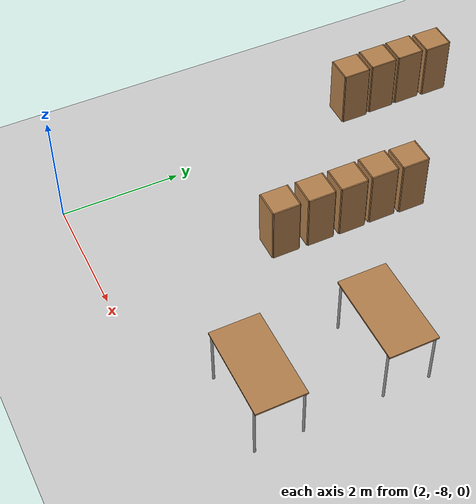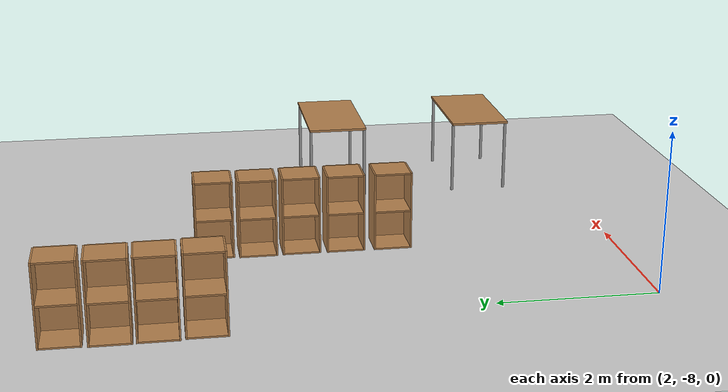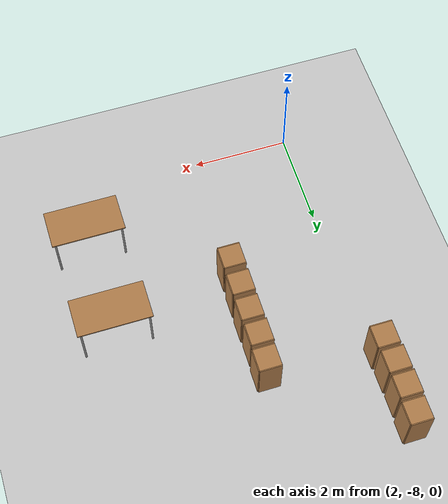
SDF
<sdf version="1.7">
 <world name="default">
  <model name="ground_plane">
   <static>1</static>
   <link name="link">
    <collision name="collision">
     <geometry><plane><normal>0 0 1</normal><size>100 100</size></plane></geometry>
     <surface><friction><ode><mu>100</mu><mu2>50</mu2></ode></friction></surface>
    </collision>
    <visual name="visual">
     <cast_shadows>0</cast_shadows>
     <geometry><plane><normal>0 0 1</normal><size>100 100</size></plane></geometry>
     <material>
      <script><uri>file://media/materials/scripts/gazebo.material</uri><name>Gazebo/Grey</name></script>
     </material>
    </visual>
   </link>
  </model>
  <model name="cabinet">
   <static>1</static>
   <link name="cabinet_bottom_plate">
    <inertial>
     <pose>0 0 -1 0 -0 0</pose>
     <inertia><ixx>2.05</ixx><ixy>0</ixy><ixz>0</ixz><iyy>2.05</iyy><iyz>0</iyz><izz>2.05</izz></inertia>
     <mass>25</mass>
    </inertial>
    <collision name="cabinet_bottom_plate_geom">
     <pose>0 0 0.01 0 -0 0</pose>
     <geometry><box><size>0.45 0.45 0.02</size></box></geometry>
    </collision>
    <visual name="cabinet_bottom_plate_geom_visual">
     <pose>0 0 0.01 0 -0 0</pose>
     <geometry><box><size>0.45 0.45 0.02</size></box></geometry>
     <material>
      <script><uri>file://media/materials/scripts/gazebo.material</uri><name>Gazebo/Wood</name></script>
     </material>
    </visual>
    <collision name="cabinet_bottom_plate_geom_cabinet_back_plate">
     <pose>0.235 0 0.51 0 -0 0</pose>
     <geometry><box><size>0.02 0.45 1.02</size></box></geometry>
    </collision>
    <visual name="cabinet_bottom_plate_geom_cabinet_back_plate_visual">
     <pose>0.235 0 0.51 0 -0 0</pose>
     <geometry><box><size>0.02 0.45 1.02</size></box></geometry>
     <material>
      <script><uri>file://media/materials/scripts/gazebo.material</uri><name>Gazebo/Wood</name></script>
     </material>
    </visual>
    <collision name="cabinet_bottom_plate_geom_cabinet_left_plate">
     <pose>0 0.235 0.51 0 -0 0</pose>
     <geometry><box><size>0.45 0.02 1.02</size></box></geometry>
    </collision>
    <visual name="cabinet_bottom_plate_geom_cabinet_left_plate_visual">
     <pose>0 0.235 0.51 0 -0 0</pose>
     <geometry><box><size>0.45 0.02 1.02</size></box></geometry>
     <material>
      <script><uri>file://media/materials/scripts/gazebo.material</uri><name>Gazebo/Wood</name></script>
     </material>
    </visual>
    <collision name="cabinet_bottom_plate_geom_cabinet_middle_plate">
     <pose>0 0 0.51 0 -0 0</pose>
     <geometry><box><size>0.45 0.45 0.02</size></box></geometry>
    </collision>
    <visual name="cabinet_bottom_plate_geom_cabinet_middle_plate_visual">
     <pose>0 0 0.51 0 -0 0</pose>
     <geometry><box><size>0.45 0.45 0.02</size></box></geometry>
     <material>
      <script><uri>file://media/materials/scripts/gazebo.material</uri><name>Gazebo/Wood</name></script>
     </material>
    </visual>
    <collision name="cabinet_bottom_plate_geom_cabinet_right_plate">
     <pose>0 -0.235 0.51 0 -0 0</pose>
     <geometry><box><size>0.45 0.02 1.02</size></box></geometry>
    </collision>
    <visual name="cabinet_bottom_plate_geom_cabinet_right_plate_visual">
     <pose>0 -0.235 0.51 0 -0 0</pose>
     <geometry><box><size>0.45 0.02 1.02</size></box></geometry>
     <material>
      <script><uri>file://media/materials/scripts/gazebo.material</uri><name>Gazebo/Wood</name></script>
     </material>
    </visual>
    <collision name="cabinet_bottom_plate_geom_cabinet_top_plate">
     <pose>0 0 1.01 0 -0 0</pose>
     <geometry><box><size>0.45 0.45 0.02</size></box></geometry>
    </collision>
    <visual name="cabinet_bottom_plate_geom_cabinet_top_plate_visual">
     <pose>0 0 1.01 0 -0 0</pose>
     <geometry><box><size>0.45 0.45 0.02</size></box></geometry>
     <material>
      <script><uri>file://media/materials/scripts/gazebo.material</uri><name>Gazebo/Wood</name></script>
     </material>
    </visual>
   </link>
   <pose>4.11256 -2.83358 0 0 -0 0</pose>
  </model>
  <model name="cabinet_0">
   <static>1</static>
   <link name="cabinet_bottom_plate">
    <inertial>
     <pose>0 0 -1 0 -0 0</pose>
     <inertia><ixx>2.05</ixx><ixy>0</ixy><ixz>0</ixz><iyy>2.05</iyy><iyz>0</iyz><izz>2.05</izz></inertia>
     <mass>25</mass>
    </inertial>
    <collision name="cabinet_bottom_plate_geom">
     <pose>0 0 0.01 0 -0 0</pose>
     <geometry><box><size>0.45 0.45 0.02</size></box></geometry>
    </collision>
    <visual name="cabinet_bottom_plate_geom_visual">
     <pose>0 0 0.01 0 -0 0</pose>
     <geometry><box><size>0.45 0.45 0.02</size></box></geometry>
     <material>
      <script><uri>file://media/materials/scripts/gazebo.material</uri><name>Gazebo/Wood</name></script>
     </material>
    </visual>
    <collision name="cabinet_bottom_plate_geom_cabinet_back_plate">
     <pose>0.235 0 0.51 0 -0 0</pose>
     <geometry><box><size>0.02 0.45 1.02</size></box></geometry>
    </collision>
    <visual name="cabinet_bottom_plate_geom_cabinet_back_plate_visual">
     <pose>0.235 0 0.51 0 -0 0</pose>
     <geometry><box><size>0.02 0.45 1.02</size></box></geometry>
     <material>
      <script><uri>file://media/materials/scripts/gazebo.material</uri><name>Gazebo/Wood</name></script>
     </material>
    </visual>
    <collision name="cabinet_bottom_plate_geom_cabinet_left_plate">
     <pose>0 0.235 0.51 0 -0 0</pose>
     <geometry><box><size>0.45 0.02 1.02</size></box></geometry>
    </collision>
    <visual name="cabinet_bottom_plate_geom_cabinet_left_plate_visual">
     <pose>0 0.235 0.51 0 -0 0</pose>
     <geometry><box><size>0.45 0.02 1.02</size></box></geometry>
     <material>
      <script><uri>file://media/materials/scripts/gazebo.material</uri><name>Gazebo/Wood</name></script>
     </material>
    </visual>
    <collision name="cabinet_bottom_plate_geom_cabinet_middle_plate">
     <pose>0 0 0.51 0 -0 0</pose>
     <geometry><box><size>0.45 0.45 0.02</size></box></geometry>
    </collision>
    <visual name="cabinet_bottom_plate_geom_cabinet_middle_plate_visual">
     <pose>0 0 0.51 0 -0 0</pose>
     <geometry><box><size>0.45 0.45 0.02</size></box></geometry>
     <material>
      <script><uri>file://media/materials/scripts/gazebo.material</uri><name>Gazebo/Wood</name></script>
     </material>
    </visual>
    <collision name="cabinet_bottom_plate_geom_cabinet_right_plate">
     <pose>0 -0.235 0.51 0 -0 0</pose>
     <geometry><box><size>0.45 0.02 1.02</size></box></geometry>
    </collision>
    <visual name="cabinet_bottom_plate_geom_cabinet_right_plate_visual">
     <pose>0 -0.235 0.51 0 -0 0</pose>
     <geometry><box><size>0.45 0.02 1.02</size></box></geometry>
     <material>
      <script><uri>file://media/materials/scripts/gazebo.material</uri><name>Gazebo/Wood</name></script>
     </material>
    </visual>
    <collision name="cabinet_bottom_plate_geom_cabinet_top_plate">
     <pose>0 0 1.01 0 -0 0</pose>
     <geometry><box><size>0.45 0.45 0.02</size></box></geometry>
    </collision>
    <visual name="cabinet_bottom_plate_geom_cabinet_top_plate_visual">
     <pose>0 0 1.01 0 -0 0</pose>
     <geometry><box><size>0.45 0.45 0.02</size></box></geometry>
     <material>
      <script><uri>file://media/materials/scripts/gazebo.material</uri><name>Gazebo/Wood</name></script>
     </material>
    </visual>
   </link>
   <pose>4.09394 -3.38123 0 0 -0 0</pose>
  </model>
  <model name="cabinet_1">
   <static>1</static>
   <link name="cabinet_bottom_plate">
    <inertial>
     <pose>0 0 -1 0 -0 0</pose>
     <inertia><ixx>2.05</ixx><ixy>0</ixy><ixz>0</ixz><iyy>2.05</iyy><iyz>0</iyz><izz>2.05</izz></inertia>
     <mass>25</mass>
    </inertial>
    <collision name="cabinet_bottom_plate_geom">
     <pose>0 0 0.01 0 -0 0</pose>
     <geometry><box><size>0.45 0.45 0.02</size></box></geometry>
    </collision>
    <visual name="cabinet_bottom_plate_geom_visual">
     <pose>0 0 0.01 0 -0 0</pose>
     <geometry><box><size>0.45 0.45 0.02</size></box></geometry>
     <material>
      <script><uri>file://media/materials/scripts/gazebo.material</uri><name>Gazebo/Wood</name></script>
     </material>
    </visual>
    <collision name="cabinet_bottom_plate_geom_cabinet_back_plate">
     <pose>0.235 0 0.51 0 -0 0</pose>
     <geometry><box><size>0.02 0.45 1.02</size></box></geometry>
    </collision>
    <visual name="cabinet_bottom_plate_geom_cabinet_back_plate_visual">
     <pose>0.235 0 0.51 0 -0 0</pose>
     <geometry><box><size>0.02 0.45 1.02</size></box></geometry>
     <material>
      <script><uri>file://media/materials/scripts/gazebo.material</uri><name>Gazebo/Wood</name></script>
     </material>
    </visual>
    <collision name="cabinet_bottom_plate_geom_cabinet_left_plate">
     <pose>0 0.235 0.51 0 -0 0</pose>
     <geometry><box><size>0.45 0.02 1.02</size></box></geometry>
    </collision>
    <visual name="cabinet_bottom_plate_geom_cabinet_left_plate_visual">
     <pose>0 0.235 0.51 0 -0 0</pose>
     <geometry><box><size>0.45 0.02 1.02</size></box></geometry>
     <material>
      <script><uri>file://media/materials/scripts/gazebo.material</uri><name>Gazebo/Wood</name></script>
     </material>
    </visual>
    <collision name="cabinet_bottom_plate_geom_cabinet_middle_plate">
     <pose>0 0 0.51 0 -0 0</pose>
     <geometry><box><size>0.45 0.45 0.02</size></box></geometry>
    </collision>
    <visual name="cabinet_bottom_plate_geom_cabinet_middle_plate_visual">
     <pose>0 0 0.51 0 -0 0</pose>
     <geometry><box><size>0.45 0.45 0.02</size></box></geometry>
     <material>
      <script><uri>file://media/materials/scripts/gazebo.material</uri><name>Gazebo/Wood</name></script>
     </material>
    </visual>
    <collision name="cabinet_bottom_plate_geom_cabinet_right_plate">
     <pose>0 -0.235 0.51 0 -0 0</pose>
     <geometry><box><size>0.45 0.02 1.02</size></box></geometry>
    </collision>
    <visual name="cabinet_bottom_plate_geom_cabinet_right_plate_visual">
     <pose>0 -0.235 0.51 0 -0 0</pose>
     <geometry><box><size>0.45 0.02 1.02</size></box></geometry>
     <material>
      <script><uri>file://media/materials/scripts/gazebo.material</uri><name>Gazebo/Wood</name></script>
     </material>
    </visual>
    <collision name="cabinet_bottom_plate_geom_cabinet_top_plate">
     <pose>0 0 1.01 0 -0 0</pose>
     <geometry><box><size>0.45 0.45 0.02</size></box></geometry>
    </collision>
    <visual name="cabinet_bottom_plate_geom_cabinet_top_plate_visual">
     <pose>0 0 1.01 0 -0 0</pose>
     <geometry><box><size>0.45 0.45 0.02</size></box></geometry>
     <material>
      <script><uri>file://media/materials/scripts/gazebo.material</uri><name>Gazebo/Wood</name></script>
     </material>
    </visual>
   </link>
   <pose>4.10588 -3.93442 0 0 -0 0</pose>
  </model>
  <model name="cabinet_2">
   <static>1</static>
   <link name="cabinet_bottom_plate">
    <inertial>
     <pose>0 0 -1 0 -0 0</pose>
     <inertia><ixx>2.05</ixx><ixy>0</ixy><ixz>0</ixz><iyy>2.05</iyy><iyz>0</iyz><izz>2.05</izz></inertia>
     <mass>25</mass>
    </inertial>
    <collision name="cabinet_bottom_plate_geom">
     <pose>0 0 0.01 0 -0 0</pose>
     <geometry><box><size>0.45 0.45 0.02</size></box></geometry>
    </collision>
    <visual name="cabinet_bottom_plate_geom_visual">
     <pose>0 0 0.01 0 -0 0</pose>
     <geometry><box><size>0.45 0.45 0.02</size></box></geometry>
     <material>
      <script><uri>file://media/materials/scripts/gazebo.material</uri><name>Gazebo/Wood</name></script>
     </material>
    </visual>
    <collision name="cabinet_bottom_plate_geom_cabinet_back_plate">
     <pose>0.235 0 0.51 0 -0 0</pose>
     <geometry><box><size>0.02 0.45 1.02</size></box></geometry>
    </collision>
    <visual name="cabinet_bottom_plate_geom_cabinet_back_plate_visual">
     <pose>0.235 0 0.51 0 -0 0</pose>
     <geometry><box><size>0.02 0.45 1.02</size></box></geometry>
     <material>
      <script><uri>file://media/materials/scripts/gazebo.material</uri><name>Gazebo/Wood</name></script>
     </material>
    </visual>
    <collision name="cabinet_bottom_plate_geom_cabinet_left_plate">
     <pose>0 0.235 0.51 0 -0 0</pose>
     <geometry><box><size>0.45 0.02 1.02</size></box></geometry>
    </collision>
    <visual name="cabinet_bottom_plate_geom_cabinet_left_plate_visual">
     <pose>0 0.235 0.51 0 -0 0</pose>
     <geometry><box><size>0.45 0.02 1.02</size></box></geometry>
     <material>
      <script><uri>file://media/materials/scripts/gazebo.material</uri><name>Gazebo/Wood</name></script>
     </material>
    </visual>
    <collision name="cabinet_bottom_plate_geom_cabinet_middle_plate">
     <pose>0 0 0.51 0 -0 0</pose>
     <geometry><box><size>0.45 0.45 0.02</size></box></geometry>
    </collision>
    <visual name="cabinet_bottom_plate_geom_cabinet_middle_plate_visual">
     <pose>0 0 0.51 0 -0 0</pose>
     <geometry><box><size>0.45 0.45 0.02</size></box></geometry>
     <material>
      <script><uri>file://media/materials/scripts/gazebo.material</uri><name>Gazebo/Wood</name></script>
     </material>
    </visual>
    <collision name="cabinet_bottom_plate_geom_cabinet_right_plate">
     <pose>0 -0.235 0.51 0 -0 0</pose>
     <geometry><box><size>0.45 0.02 1.02</size></box></geometry>
    </collision>
    <visual name="cabinet_bottom_plate_geom_cabinet_right_plate_visual">
     <pose>0 -0.235 0.51 0 -0 0</pose>
     <geometry><box><size>0.45 0.02 1.02</size></box></geometry>
     <material>
      <script><uri>file://media/materials/scripts/gazebo.material</uri><name>Gazebo/Wood</name></script>
     </material>
    </visual>
    <collision name="cabinet_bottom_plate_geom_cabinet_top_plate">
     <pose>0 0 1.01 0 -0 0</pose>
     <geometry><box><size>0.45 0.45 0.02</size></box></geometry>
    </collision>
    <visual name="cabinet_bottom_plate_geom_cabinet_top_plate_visual">
     <pose>0 0 1.01 0 -0 0</pose>
     <geometry><box><size>0.45 0.45 0.02</size></box></geometry>
     <material>
      <script><uri>file://media/materials/scripts/gazebo.material</uri><name>Gazebo/Wood</name></script>
     </material>
    </visual>
   </link>
   <pose>4.10229 -4.50365 0 0 -0 0</pose>
  </model>
  <model name="cabinet_3">
   <static>1</static>
   <link name="cabinet_bottom_plate">
    <inertial>
     <pose>0 0 -1 0 -0 0</pose>
     <inertia><ixx>2.05</ixx><ixy>0</ixy><ixz>0</ixz><iyy>2.05</iyy><iyz>0</iyz><izz>2.05</izz></inertia>
     <mass>25</mass>
    </inertial>
    <collision name="cabinet_bottom_plate_geom">
     <pose>0 0 0.01 0 -0 0</pose>
     <geometry><box><size>0.45 0.45 0.02</size></box></geometry>
    </collision>
    <visual name="cabinet_bottom_plate_geom_visual">
     <pose>0 0 0.01 0 -0 0</pose>
     <geometry><box><size>0.45 0.45 0.02</size></box></geometry>
     <material>
      <script><uri>file://media/materials/scripts/gazebo.material</uri><name>Gazebo/Wood</name></script>
     </material>
    </visual>
    <collision name="cabinet_bottom_plate_geom_cabinet_back_plate">
     <pose>0.235 0 0.51 0 -0 0</pose>
     <geometry><box><size>0.02 0.45 1.02</size></box></geometry>
    </collision>
    <visual name="cabinet_bottom_plate_geom_cabinet_back_plate_visual">
     <pose>0.235 0 0.51 0 -0 0</pose>
     <geometry><box><size>0.02 0.45 1.02</size></box></geometry>
     <material>
      <script><uri>file://media/materials/scripts/gazebo.material</uri><name>Gazebo/Wood</name></script>
     </material>
    </visual>
    <collision name="cabinet_bottom_plate_geom_cabinet_left_plate">
     <pose>0 0.235 0.51 0 -0 0</pose>
     <geometry><box><size>0.45 0.02 1.02</size></box></geometry>
    </collision>
    <visual name="cabinet_bottom_plate_geom_cabinet_left_plate_visual">
     <pose>0 0.235 0.51 0 -0 0</pose>
     <geometry><box><size>0.45 0.02 1.02</size></box></geometry>
     <material>
      <script><uri>file://media/materials/scripts/gazebo.material</uri><name>Gazebo/Wood</name></script>
     </material>
    </visual>
    <collision name="cabinet_bottom_plate_geom_cabinet_middle_plate">
     <pose>0 0 0.51 0 -0 0</pose>
     <geometry><box><size>0.45 0.45 0.02</size></box></geometry>
    </collision>
    <visual name="cabinet_bottom_plate_geom_cabinet_middle_plate_visual">
     <pose>0 0 0.51 0 -0 0</pose>
     <geometry><box><size>0.45 0.45 0.02</size></box></geometry>
     <material>
      <script><uri>file://media/materials/scripts/gazebo.material</uri><name>Gazebo/Wood</name></script>
     </material>
    </visual>
    <collision name="cabinet_bottom_plate_geom_cabinet_right_plate">
     <pose>0 -0.235 0.51 0 -0 0</pose>
     <geometry><box><size>0.45 0.02 1.02</size></box></geometry>
    </collision>
    <visual name="cabinet_bottom_plate_geom_cabinet_right_plate_visual">
     <pose>0 -0.235 0.51 0 -0 0</pose>
     <geometry><box><size>0.45 0.02 1.02</size></box></geometry>
     <material>
      <script><uri>file://media/materials/scripts/gazebo.material</uri><name>Gazebo/Wood</name></script>
     </material>
    </visual>
    <collision name="cabinet_bottom_plate_geom_cabinet_top_plate">
     <pose>0 0 1.01 0 -0 0</pose>
     <geometry><box><size>0.45 0.45 0.02</size></box></geometry>
    </collision>
    <visual name="cabinet_bottom_plate_geom_cabinet_top_plate_visual">
     <pose>0 0 1.01 0 -0 0</pose>
     <geometry><box><size>0.45 0.45 0.02</size></box></geometry>
     <material>
      <script><uri>file://media/materials/scripts/gazebo.material</uri><name>Gazebo/Wood</name></script>
     </material>
    </visual>
   </link>
   <pose>4.09603 -5.11248 0 0 -0 0</pose>
  </model>
  <model name="table_0_clone_clone_1">
   <static>1</static>
   <link name="link">
    <collision name="surface">
     <pose>0 0 1 0 -0 0</pose>
     <geometry><box><size>1.5 0.8 0.03</size></box></geometry>
     <surface><friction><ode><mu>0.6</mu><mu2>0.6</mu2></ode></friction></surface>
    </collision>
    <visual name="visual1">
     <pose>0 0 1 0 -0 0</pose>
     <geometry><box><size>1.5 0.8 0.03</size></box></geometry>
     <material>
      <script><uri>file://media/materials/scripts/gazebo.material</uri><name>Gazebo/Wood</name></script>
     </material>
    </visual>
    <collision name="front_left_leg">
     <pose>0.68 0.38 0.5 0 -0 0</pose>
     <geometry><cylinder><radius>0.02</radius><length>1</length></cylinder></geometry>
    </collision>
    <visual name="front_left_leg">
     <pose>0.68 0.38 0.5 0 -0 0</pose>
     <geometry><cylinder><radius>0.02</radius><length>1</length></cylinder></geometry>
     <material>
      <script><uri>file://media/materials/scripts/gazebo.material</uri><name>Gazebo/Grey</name></script>
     </material>
    </visual>
    <collision name="front_right_leg">
     <pose>0.68 -0.38 0.5 0 -0 0</pose>
     <geometry><cylinder><radius>0.02</radius><length>1</length></cylinder></geometry>
    </collision>
    <visual name="front_right_leg">
     <pose>0.68 -0.38 0.5 0 -0 0</pose>
     <geometry><cylinder><radius>0.02</radius><length>1</length></cylinder></geometry>
     <material>
      <script><uri>file://media/materials/scripts/gazebo.material</uri><name>Gazebo/Grey</name></script>
     </material>
    </visual>
    <collision name="back_right_leg">
     <pose>-0.68 -0.38 0.5 0 -0 0</pose>
     <geometry><cylinder><radius>0.02</radius><length>1</length></cylinder></geometry>
    </collision>
    <visual name="back_right_leg">
     <pose>-0.68 -0.38 0.5 0 -0 0</pose>
     <geometry><cylinder><radius>0.02</radius><length>1</length></cylinder></geometry>
     <material>
      <script><uri>file://media/materials/scripts/gazebo.material</uri><name>Gazebo/Grey</name></script>
     </material>
    </visual>
    <collision name="back_left_leg">
     <pose>-0.68 0.38 0.5 0 -0 0</pose>
     <geometry><cylinder><radius>0.02</radius><length>1</length></cylinder></geometry>
    </collision>
    <visual name="back_left_leg">
     <pose>-0.68 0.38 0.5 0 -0 0</pose>
     <geometry><cylinder><radius>0.02</radius><length>1</length></cylinder></geometry>
     <material>
      <script><uri>file://media/materials/scripts/gazebo.material</uri><name>Gazebo/Grey</name></script>
     </material>
    </visual>
   </link>
   <pose>6.68572 -6.75251 0 0 -0 0</pose>
  </model>
  <model name="table_0_clone_clone_2">
   <static>1</static>
   <link name="link">
    <collision name="surface">
     <pose>0 0 1 0 -0 0</pose>
     <geometry><box><size>1.5 0.8 0.03</size></box></geometry>
     <surface><friction><ode><mu>0.6</mu><mu2>0.6</mu2></ode></friction></surface>
    </collision>
    <visual name="visual1">
     <pose>0 0 1 0 -0 0</pose>
     <geometry><box><size>1.5 0.8 0.03</size></box></geometry>
     <material>
      <script><uri>file://media/materials/scripts/gazebo.material</uri><name>Gazebo/Wood</name></script>
     </material>
    </visual>
    <collision name="front_left_leg">
     <pose>0.68 0.38 0.5 0 -0 0</pose>
     <geometry><cylinder><radius>0.02</radius><length>1</length></cylinder></geometry>
    </collision>
    <visual name="front_left_leg">
     <pose>0.68 0.38 0.5 0 -0 0</pose>
     <geometry><cylinder><radius>0.02</radius><length>1</length></cylinder></geometry>
     <material>
      <script><uri>file://media/materials/scripts/gazebo.material</uri><name>Gazebo/Grey</name></script>
     </material>
    </visual>
    <collision name="front_right_leg">
     <pose>0.68 -0.38 0.5 0 -0 0</pose>
     <geometry><cylinder><radius>0.02</radius><length>1</length></cylinder></geometry>
    </collision>
    <visual name="front_right_leg">
     <pose>0.68 -0.38 0.5 0 -0 0</pose>
     <geometry><cylinder><radius>0.02</radius><length>1</length></cylinder></geometry>
     <material>
      <script><uri>file://media/materials/scripts/gazebo.material</uri><name>Gazebo/Grey</name></script>
     </material>
    </visual>
    <collision name="back_right_leg">
     <pose>-0.68 -0.38 0.5 0 -0 0</pose>
     <geometry><cylinder><radius>0.02</radius><length>1</length></cylinder></geometry>
    </collision>
    <visual name="back_right_leg">
     <pose>-0.68 -0.38 0.5 0 -0 0</pose>
     <geometry><cylinder><radius>0.02</radius><length>1</length></cylinder></geometry>
     <material>
      <script><uri>file://media/materials/scripts/gazebo.material</uri><name>Gazebo/Grey</name></script>
     </material>
    </visual>
    <collision name="back_left_leg">
     <pose>-0.68 0.38 0.5 0 -0 0</pose>
     <geometry><cylinder><radius>0.02</radius><length>1</length></cylinder></geometry>
    </collision>
    <visual name="back_left_leg">
     <pose>-0.68 0.38 0.5 0 -0 0</pose>
     <geometry><cylinder><radius>0.02</radius><length>1</length></cylinder></geometry>
     <material>
      <script><uri>file://media/materials/scripts/gazebo.material</uri><name>Gazebo/Grey</name></script>
     </material>
    </visual>
   </link>
   <pose>6.66889 -4.69846 0 0 -0 0</pose>
  </model>
  <model name="cabinet_clone">
   <static>1</static>
   <link name="cabinet_bottom_plate">
    <inertial>
     <pose>0 0 -1 0 -0 0</pose>
     <inertia><ixx>2.05</ixx><ixy>0</ixy><ixz>0</ixz><iyy>2.05</iyy><iyz>0</iyz><izz>2.05</izz></inertia>
     <mass>25</mass>
    </inertial>
    <collision name="cabinet_bottom_plate_geom">
     <pose>0 0 0.01 0 -0 0</pose>
     <geometry><box><size>0.45 0.45 0.02</size></box></geometry>
    </collision>
    <visual name="cabinet_bottom_plate_geom_visual">
     <pose>0 0 0.01 0 -0 0</pose>
     <geometry><box><size>0.45 0.45 0.02</size></box></geometry>
     <material>
      <script><uri>file://media/materials/scripts/gazebo.material</uri><name>Gazebo/Wood</name></script>
     </material>
    </visual>
    <collision name="cabinet_bottom_plate_geom_cabinet_back_plate">
     <pose>0.235 0 0.51 0 -0 0</pose>
     <geometry><box><size>0.02 0.45 1.02</size></box></geometry>
    </collision>
    <visual name="cabinet_bottom_plate_geom_cabinet_back_plate_visual">
     <pose>0.235 0 0.51 0 -0 0</pose>
     <geometry><box><size>0.02 0.45 1.02</size></box></geometry>
     <material>
      <script><uri>file://media/materials/scripts/gazebo.material</uri><name>Gazebo/Wood</name></script>
     </material>
    </visual>
    <collision name="cabinet_bottom_plate_geom_cabinet_left_plate">
     <pose>0 0.235 0.51 0 -0 0</pose>
     <geometry><box><size>0.45 0.02 1.02</size></box></geometry>
    </collision>
    <visual name="cabinet_bottom_plate_geom_cabinet_left_plate_visual">
     <pose>0 0.235 0.51 0 -0 0</pose>
     <geometry><box><size>0.45 0.02 1.02</size></box></geometry>
     <material>
      <script><uri>file://media/materials/scripts/gazebo.material</uri><name>Gazebo/Wood</name></script>
     </material>
    </visual>
    <collision name="cabinet_bottom_plate_geom_cabinet_middle_plate">
     <pose>0 0 0.51 0 -0 0</pose>
     <geometry><box><size>0.45 0.45 0.02</size></box></geometry>
    </collision>
    <visual name="cabinet_bottom_plate_geom_cabinet_middle_plate_visual">
     <pose>0 0 0.51 0 -0 0</pose>
     <geometry><box><size>0.45 0.45 0.02</size></box></geometry>
     <material>
      <script><uri>file://media/materials/scripts/gazebo.material</uri><name>Gazebo/Wood</name></script>
     </material>
    </visual>
    <collision name="cabinet_bottom_plate_geom_cabinet_right_plate">
     <pose>0 -0.235 0.51 0 -0 0</pose>
     <geometry><box><size>0.45 0.02 1.02</size></box></geometry>
    </collision>
    <visual name="cabinet_bottom_plate_geom_cabinet_right_plate_visual">
     <pose>0 -0.235 0.51 0 -0 0</pose>
     <geometry><box><size>0.45 0.02 1.02</size></box></geometry>
     <material>
      <script><uri>file://media/materials/scripts/gazebo.material</uri><name>Gazebo/Wood</name></script>
     </material>
    </visual>
    <collision name="cabinet_bottom_plate_geom_cabinet_top_plate">
     <pose>0 0 1.01 0 -0 0</pose>
     <geometry><box><size>0.45 0.45 0.02</size></box></geometry>
    </collision>
    <visual name="cabinet_bottom_plate_geom_cabinet_top_plate_visual">
     <pose>0 0 1.01 0 -0 0</pose>
     <geometry><box><size>0.45 0.45 0.02</size></box></geometry>
     <material>
      <script><uri>file://media/materials/scripts/gazebo.material</uri><name>Gazebo/Wood</name></script>
     </material>
    </visual>
   </link>
   <pose>1.80792 -1.01626 0 0 -0 0</pose>
  </model>
  <model name="cabinet_clone_0">
   <static>1</static>
   <link name="cabinet_bottom_plate">
    <inertial>
     <pose>0 0 -1 0 -0 0</pose>
     <inertia><ixx>2.05</ixx><ixy>0</ixy><ixz>0</ixz><iyy>2.05</iyy><iyz>0</iyz><izz>2.05</izz></inertia>
     <mass>25</mass>
    </inertial>
    <collision name="cabinet_bottom_plate_geom">
     <pose>0 0 0.01 0 -0 0</pose>
     <geometry><box><size>0.45 0.45 0.02</size></box></geometry>
    </collision>
    <visual name="cabinet_bottom_plate_geom_visual">
     <pose>0 0 0.01 0 -0 0</pose>
     <geometry><box><size>0.45 0.45 0.02</size></box></geometry>
     <material>
      <script><uri>file://media/materials/scripts/gazebo.material</uri><name>Gazebo/Wood</name></script>
     </material>
    </visual>
    <collision name="cabinet_bottom_plate_geom_cabinet_back_plate">
     <pose>0.235 0 0.51 0 -0 0</pose>
     <geometry><box><size>0.02 0.45 1.02</size></box></geometry>
    </collision>
    <visual name="cabinet_bottom_plate_geom_cabinet_back_plate_visual">
     <pose>0.235 0 0.51 0 -0 0</pose>
     <geometry><box><size>0.02 0.45 1.02</size></box></geometry>
     <material>
      <script><uri>file://media/materials/scripts/gazebo.material</uri><name>Gazebo/Wood</name></script>
     </material>
    </visual>
    <collision name="cabinet_bottom_plate_geom_cabinet_left_plate">
     <pose>0 0.235 0.51 0 -0 0</pose>
     <geometry><box><size>0.45 0.02 1.02</size></box></geometry>
    </collision>
    <visual name="cabinet_bottom_plate_geom_cabinet_left_plate_visual">
     <pose>0 0.235 0.51 0 -0 0</pose>
     <geometry><box><size>0.45 0.02 1.02</size></box></geometry>
     <material>
      <script><uri>file://media/materials/scripts/gazebo.material</uri><name>Gazebo/Wood</name></script>
     </material>
    </visual>
    <collision name="cabinet_bottom_plate_geom_cabinet_middle_plate">
     <pose>0 0 0.51 0 -0 0</pose>
     <geometry><box><size>0.45 0.45 0.02</size></box></geometry>
    </collision>
    <visual name="cabinet_bottom_plate_geom_cabinet_middle_plate_visual">
     <pose>0 0 0.51 0 -0 0</pose>
     <geometry><box><size>0.45 0.45 0.02</size></box></geometry>
     <material>
      <script><uri>file://media/materials/scripts/gazebo.material</uri><name>Gazebo/Wood</name></script>
     </material>
    </visual>
    <collision name="cabinet_bottom_plate_geom_cabinet_right_plate">
     <pose>0 -0.235 0.51 0 -0 0</pose>
     <geometry><box><size>0.45 0.02 1.02</size></box></geometry>
    </collision>
    <visual name="cabinet_bottom_plate_geom_cabinet_right_plate_visual">
     <pose>0 -0.235 0.51 0 -0 0</pose>
     <geometry><box><size>0.45 0.02 1.02</size></box></geometry>
     <material>
      <script><uri>file://media/materials/scripts/gazebo.material</uri><name>Gazebo/Wood</name></script>
     </material>
    </visual>
    <collision name="cabinet_bottom_plate_geom_cabinet_top_plate">
     <pose>0 0 1.01 0 -0 0</pose>
     <geometry><box><size>0.45 0.45 0.02</size></box></geometry>
    </collision>
    <visual name="cabinet_bottom_plate_geom_cabinet_top_plate_visual">
     <pose>0 0 1.01 0 -0 0</pose>
     <geometry><box><size>0.45 0.45 0.02</size></box></geometry>
     <material>
      <script><uri>file://media/materials/scripts/gazebo.material</uri><name>Gazebo/Wood</name></script>
     </material>
    </visual>
   </link>
   <pose>1.7911 -1.56109 0 0 -0 0</pose>
  </model>
  <model name="cabinet_clone_1">
   <static>1</static>
   <link name="cabinet_bottom_plate">
    <inertial>
     <pose>0 0 -1 0 -0 0</pose>
     <inertia><ixx>2.05</ixx><ixy>0</ixy><ixz>0</ixz><iyy>2.05</iyy><iyz>0</iyz><izz>2.05</izz></inertia>
     <mass>25</mass>
    </inertial>
    <collision name="cabinet_bottom_plate_geom">
     <pose>0 0 0.01 0 -0 0</pose>
     <geometry><box><size>0.45 0.45 0.02</size></box></geometry>
    </collision>
    <visual name="cabinet_bottom_plate_geom_visual">
     <pose>0 0 0.01 0 -0 0</pose>
     <geometry><box><size>0.45 0.45 0.02</size></box></geometry>
     <material>
      <script><uri>file://media/materials/scripts/gazebo.material</uri><name>Gazebo/Wood</name></script>
     </material>
    </visual>
    <collision name="cabinet_bottom_plate_geom_cabinet_back_plate">
     <pose>0.235 0 0.51 0 -0 0</pose>
     <geometry><box><size>0.02 0.45 1.02</size></box></geometry>
    </collision>
    <visual name="cabinet_bottom_plate_geom_cabinet_back_plate_visual">
     <pose>0.235 0 0.51 0 -0 0</pose>
     <geometry><box><size>0.02 0.45 1.02</size></box></geometry>
     <material>
      <script><uri>file://media/materials/scripts/gazebo.material</uri><name>Gazebo/Wood</name></script>
     </material>
    </visual>
    <collision name="cabinet_bottom_plate_geom_cabinet_left_plate">
     <pose>0 0.235 0.51 0 -0 0</pose>
     <geometry><box><size>0.45 0.02 1.02</size></box></geometry>
    </collision>
    <visual name="cabinet_bottom_plate_geom_cabinet_left_plate_visual">
     <pose>0 0.235 0.51 0 -0 0</pose>
     <geometry><box><size>0.45 0.02 1.02</size></box></geometry>
     <material>
      <script><uri>file://media/materials/scripts/gazebo.material</uri><name>Gazebo/Wood</name></script>
     </material>
    </visual>
    <collision name="cabinet_bottom_plate_geom_cabinet_middle_plate">
     <pose>0 0 0.51 0 -0 0</pose>
     <geometry><box><size>0.45 0.45 0.02</size></box></geometry>
    </collision>
    <visual name="cabinet_bottom_plate_geom_cabinet_middle_plate_visual">
     <pose>0 0 0.51 0 -0 0</pose>
     <geometry><box><size>0.45 0.45 0.02</size></box></geometry>
     <material>
      <script><uri>file://media/materials/scripts/gazebo.material</uri><name>Gazebo/Wood</name></script>
     </material>
    </visual>
    <collision name="cabinet_bottom_plate_geom_cabinet_right_plate">
     <pose>0 -0.235 0.51 0 -0 0</pose>
     <geometry><box><size>0.45 0.02 1.02</size></box></geometry>
    </collision>
    <visual name="cabinet_bottom_plate_geom_cabinet_right_plate_visual">
     <pose>0 -0.235 0.51 0 -0 0</pose>
     <geometry><box><size>0.45 0.02 1.02</size></box></geometry>
     <material>
      <script><uri>file://media/materials/scripts/gazebo.material</uri><name>Gazebo/Wood</name></script>
     </material>
    </visual>
    <collision name="cabinet_bottom_plate_geom_cabinet_top_plate">
     <pose>0 0 1.01 0 -0 0</pose>
     <geometry><box><size>0.45 0.45 0.02</size></box></geometry>
    </collision>
    <visual name="cabinet_bottom_plate_geom_cabinet_top_plate_visual">
     <pose>0 0 1.01 0 -0 0</pose>
     <geometry><box><size>0.45 0.45 0.02</size></box></geometry>
     <material>
      <script><uri>file://media/materials/scripts/gazebo.material</uri><name>Gazebo/Wood</name></script>
     </material>
    </visual>
   </link>
   <pose>1.80086 -2.08734 0 0 -0 0</pose>
  </model>
  <model name="cabinet_clone_2">
   <static>1</static>
   <link name="cabinet_bottom_plate">
    <inertial>
     <pose>0 0 -1 0 -0 0</pose>
     <inertia><ixx>2.05</ixx><ixy>0</ixy><ixz>0</ixz><iyy>2.05</iyy><iyz>0</iyz><izz>2.05</izz></inertia>
     <mass>25</mass>
    </inertial>
    <collision name="cabinet_bottom_plate_geom">
     <pose>0 0 0.01 0 -0 0</pose>
     <geometry><box><size>0.45 0.45 0.02</size></box></geometry>
    </collision>
    <visual name="cabinet_bottom_plate_geom_visual">
     <pose>0 0 0.01 0 -0 0</pose>
     <geometry><box><size>0.45 0.45 0.02</size></box></geometry>
     <material>
      <script><uri>file://media/materials/scripts/gazebo.material</uri><name>Gazebo/Wood</name></script>
     </material>
    </visual>
    <collision name="cabinet_bottom_plate_geom_cabinet_back_plate">
     <pose>0.235 0 0.51 0 -0 0</pose>
     <geometry><box><size>0.02 0.45 1.02</size></box></geometry>
    </collision>
    <visual name="cabinet_bottom_plate_geom_cabinet_back_plate_visual">
     <pose>0.235 0 0.51 0 -0 0</pose>
     <geometry><box><size>0.02 0.45 1.02</size></box></geometry>
     <material>
      <script><uri>file://media/materials/scripts/gazebo.material</uri><name>Gazebo/Wood</name></script>
     </material>
    </visual>
    <collision name="cabinet_bottom_plate_geom_cabinet_left_plate">
     <pose>0 0.235 0.51 0 -0 0</pose>
     <geometry><box><size>0.45 0.02 1.02</size></box></geometry>
    </collision>
    <visual name="cabinet_bottom_plate_geom_cabinet_left_plate_visual">
     <pose>0 0.235 0.51 0 -0 0</pose>
     <geometry><box><size>0.45 0.02 1.02</size></box></geometry>
     <material>
      <script><uri>file://media/materials/scripts/gazebo.material</uri><name>Gazebo/Wood</name></script>
     </material>
    </visual>
    <collision name="cabinet_bottom_plate_geom_cabinet_middle_plate">
     <pose>0 0 0.51 0 -0 0</pose>
     <geometry><box><size>0.45 0.45 0.02</size></box></geometry>
    </collision>
    <visual name="cabinet_bottom_plate_geom_cabinet_middle_plate_visual">
     <pose>0 0 0.51 0 -0 0</pose>
     <geometry><box><size>0.45 0.45 0.02</size></box></geometry>
     <material>
      <script><uri>file://media/materials/scripts/gazebo.material</uri><name>Gazebo/Wood</name></script>
     </material>
    </visual>
    <collision name="cabinet_bottom_plate_geom_cabinet_right_plate">
     <pose>0 -0.235 0.51 0 -0 0</pose>
     <geometry><box><size>0.45 0.02 1.02</size></box></geometry>
    </collision>
    <visual name="cabinet_bottom_plate_geom_cabinet_right_plate_visual">
     <pose>0 -0.235 0.51 0 -0 0</pose>
     <geometry><box><size>0.45 0.02 1.02</size></box></geometry>
     <material>
      <script><uri>file://media/materials/scripts/gazebo.material</uri><name>Gazebo/Wood</name></script>
     </material>
    </visual>
    <collision name="cabinet_bottom_plate_geom_cabinet_top_plate">
     <pose>0 0 1.01 0 -0 0</pose>
     <geometry><box><size>0.45 0.45 0.02</size></box></geometry>
    </collision>
    <visual name="cabinet_bottom_plate_geom_cabinet_top_plate_visual">
     <pose>0 0 1.01 0 -0 0</pose>
     <geometry><box><size>0.45 0.45 0.02</size></box></geometry>
     <material>
      <script><uri>file://media/materials/scripts/gazebo.material</uri><name>Gazebo/Wood</name></script>
     </material>
    </visual>
   </link>
   <pose>1.82482 -2.62219 0 0 -0 0</pose>
  </model>
 </world>
</sdf>
